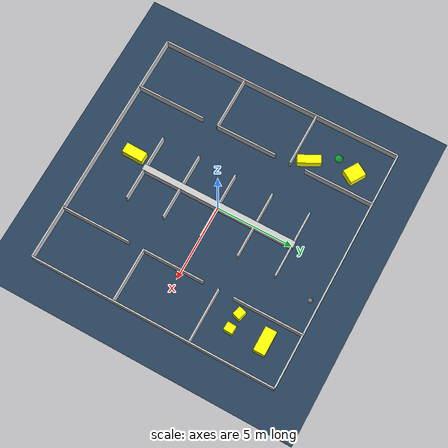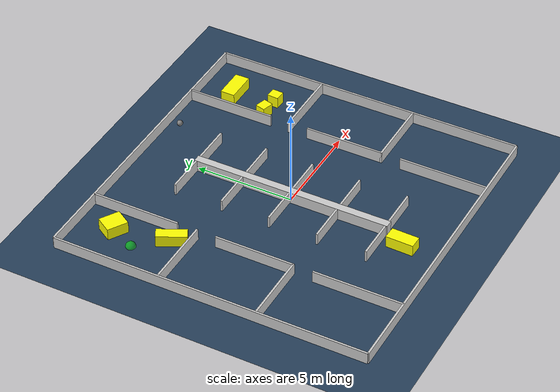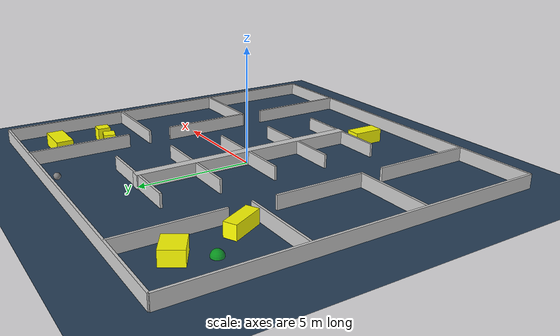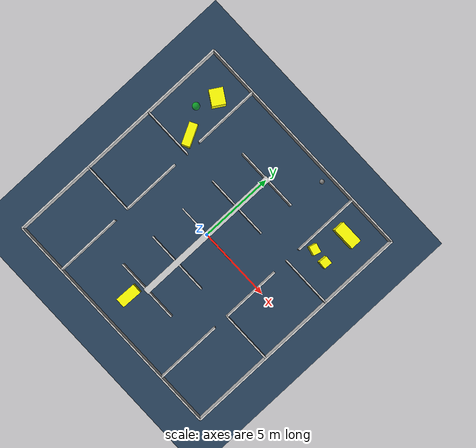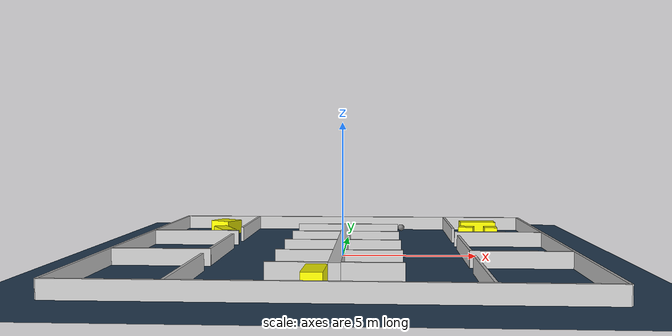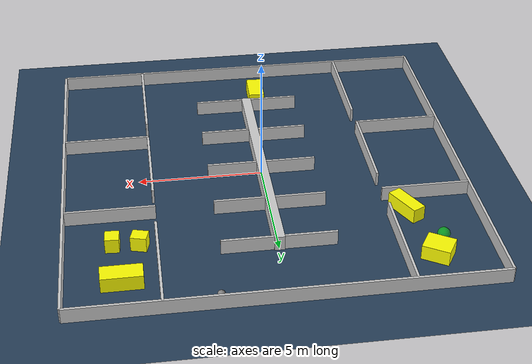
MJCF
<?xml version="1.0" ?>
<mujoco model="generated_environment">
  <option timestep="0.01" integrator="RK4" cone="elliptic"/>
  <default>
    <geom density="1"/>
  </default>
  <asset>
    <texture builtin="gradient" height="3072" rgb1="0.3 0.5 0.7" rgb2="0 0 0" type="skybox" width="512"/>
    <texture builtin="checker" height="300" mark="edge" markrgb="0.8 0.8 0.8" name="groundplane" rgb1="0.2 0.3 0.4" rgb2="0.1 0.2 0.3" type="2d" width="300"/>
    <material name="groundplane" reflectance="0.2" texrepeat="5 5" texture="groundplane" texuniform="true"/>
    <material name="robot" rgba="1.0 1.0 0.0 1.0"/>
  </asset>
  <worldbody>
    <light dir="0 0 -1" directional="true" pos="0 0 1.5"/>
    <geom condim="4" friction="0.5 0.005 0.001" material="groundplane" name="floor" size="0 0 0.05" type="plane"/>
    <body name="walls">
      <geom name="wall_1" condim="4" pos="-8.0 0.0 0.3" rgba="0.800000011920929 0.800000011920929 0.800000011920929 1.0" size="0.05 8.0 0.3" type="box"/>
      <geom name="wall_2" condim="4" pos="8.0 0.0 0.3" rgba="0.800000011920929 0.800000011920929 0.800000011920929 1.0" size="0.05 8.0 0.3" type="box"/>
      <geom name="wall_3" condim="4" pos="0.0 -8.0 0.3" rgba="0.800000011920929 0.800000011920929 0.800000011920929 1.0" size="8.0 0.05 0.3" type="box"/>
      <geom name="wall_4" condim="4" pos="0.0 8.0 0.3" rgba="0.800000011920929 0.800000011920929 0.800000011920929 1.0" size="8.0 0.05 0.3" type="box"/>
      <geom name="wall_5" condim="4" pos="-1.2 2.5 0.3" rgba="0.800000011920929 0.800000011920929 0.800000011920929 1.0" size="1.0 0.05 0.3" type="box"/>
      <geom name="wall_6" condim="4" pos="1.2 2.5 0.3" rgba="0.800000011920929 0.800000011920929 0.800000011920929 1.0" size="1.0 0.05 0.3" type="box"/>
      <geom name="wall_7" condim="4" pos="-1.2 -2.5 0.3" rgba="0.800000011920929 0.800000011920929 0.800000011920929 1.0" size="1.0 0.05 0.3" type="box"/>
      <geom name="wall_8" condim="4" pos="1.2 -2.5 0.3" rgba="0.800000011920929 0.800000011920929 0.800000011920929 1.0" size="1.0 0.05 0.3" type="box"/>
      <geom name="wall_9" condim="4" pos="-1.2 0.0 0.3" rgba="0.800000011920929 0.800000011920929 0.800000011920929 1.0" size="1.0 0.05 0.3" type="box"/>
      <geom name="wall_10" condim="4" pos="1.2 0.0 0.3" rgba="0.800000011920929 0.800000011920929 0.800000011920929 1.0" size="1.0 0.05 0.3" type="box"/>
      <geom name="wall_11" condim="4" pos="-1.2 5.0 0.3" rgba="0.800000011920929 0.800000011920929 0.800000011920929 1.0" size="1.0 0.05 0.3" type="box"/>
      <geom name="wall_12" condim="4" pos="1.2 5.0 0.3" rgba="0.800000011920929 0.800000011920929 0.800000011920929 1.0" size="1.0 0.05 0.3" type="box"/>
      <geom name="wall_13" condim="4" pos="-1.2 -5.0 0.3" rgba="0.800000011920929 0.800000011920929 0.800000011920929 1.0" size="1.0 0.05 0.3" type="box"/>
      <geom name="wall_14" condim="4" pos="1.2 -5.0 0.3" rgba="0.800000011920929 0.800000011920929 0.800000011920929 1.0" size="1.0 0.05 0.3" type="box"/>
      <geom name="wall_15" condim="4" pos="0.0 0.0 0.3" rgba="0.800000011920929 0.800000011920929 0.800000011920929 1.0" size="0.2 5.1 0.3" type="box"/>
      <geom name="wall_16" condim="4" pos="-4.5 5.75 0.3" rgba="0.800000011920929 0.800000011920929 0.800000011920929 1.0" size="0.05 2.25 0.3" type="box"/>
      <geom name="wall_17" condim="4" pos="-6.2 2.5 0.3" rgba="0.800000011920929 0.800000011920929 0.800000011920929 1.0" size="1.75 0.05 0.3" type="box"/>
      <geom name="wall_18" condim="4" pos="-4.5 -5.75 0.3" rgba="0.800000011920929 0.800000011920929 0.800000011920929 1.0" size="0.05 2.25 0.3" type="box"/>
      <geom name="wall_19" condim="4" pos="-6.2 -2.5 0.3" rgba="0.800000011920929 0.800000011920929 0.800000011920929 1.0" size="1.75 0.05 0.3" type="box"/>
      <geom name="wall_20" condim="4" pos="-4.5 -0.5 0.3" rgba="0.800000011920929 0.800000011920929 0.800000011920929 1.0" size="0.05 2.0 0.3" type="box"/>
      <geom name="wall_21" condim="4" pos="4.5 5.75 0.3" rgba="0.800000011920929 0.800000011920929 0.800000011920929 1.0" size="0.05 2.25 0.3" type="box"/>
      <geom name="wall_22" condim="4" pos="6.2 2.5 0.3" rgba="0.800000011920929 0.800000011920929 0.800000011920929 1.0" size="1.75 0.05 0.3" type="box"/>
      <geom name="wall_23" condim="4" pos="4.5 -5.75 0.3" rgba="0.800000011920929 0.800000011920929 0.800000011920929 1.0" size="0.05 2.25 0.3" type="box"/>
      <geom name="wall_24" condim="4" pos="6.2 -2.5 0.3" rgba="0.800000011920929 0.800000011920929 0.800000011920929 1.0" size="1.75 0.05 0.3" type="box"/>
      <geom name="wall_25" condim="4" pos="4.5 -0.5 0.3" rgba="0.800000011920929 0.800000011920929 0.800000011920929 1.0" size="0.05 2.0 0.3" type="box"/>
    </body>
    <body name="robot">
      <joint name="joint_x" type="slide" pos="0 0 0" axis="1 0 0"/>
      <joint name="joint_y" type="slide" pos="0 0 0" axis="0 1 0"/>
      <geom name="robot" type="sphere" pos="2.4220062252633454 7.448069987911648 0.15" size="0.15 0.15 0.15" mass="5.0" friction="1.0 0.005 0.0001" condim="4"/>
    </body>
    <body name="obstacle_1_movable">
      <geom name="obstacle_1_movable" condim="4" pos="-0.5379907595448312 -6.04367275130885 0.3" euler="0 0 268.4759258772437" friction="0.0 0.005 0.001" rgba="1 1 0 1" size="0.6904330043421395 0.33288417783408797 0.3" type="box" mass="0.1"/>
      <joint type="free"/>
    </body>
    <body name="obstacle_2_movable">
      <geom name="obstacle_2_movable" condim="4" pos="5.138565151928316 4.22955517502998 0.3" euler="0 0 74.71889364868986" friction="0.0 0.005 0.001" rgba="1 1 0 1" size="0.25888110173074963 0.3066406983180012 0.3" type="box" mass="0.1"/>
      <joint type="free"/>
    </body>
    <body name="obstacle_3_movable">
      <geom name="obstacle_3_movable" condim="4" pos="-5.751243989247745 6.200813429545725 0.3" euler="0 0 238.4993077835377" friction="0.0 0.005 0.001" rgba="1 1 0 1" size="0.4530489289813173 0.5365199748332101 0.3" type="box" mass="0.1"/>
      <joint type="free"/>
    </body>
    <body name="obstacle_4_movable">
      <geom name="obstacle_4_movable" condim="4" pos="-5.229813874952529 3.4049859881556666 0.3" euler="0 0 27.35281088512234" friction="0.0 0.005 0.001" rgba="1 1 0 1" size="0.27442463172333464 0.7411737777617953 0.3" type="box" mass="0.1"/>
      <joint type="free"/>
    </body>
    <body name="obstacle_5_movable">
      <geom name="obstacle_5_movable" condim="4" pos="6.157518749592283 4.15905879486417 0.3" euler="0 0 356.7704127316539" friction="0.0 0.005 0.001" rgba="1 1 0 1" size="0.26914230912138504 0.28641805994458097 0.3" type="box" mass="0.1"/>
      <joint type="free"/>
    </body>
    <body name="obstacle_6_movable">
      <geom name="obstacle_6_movable" condim="4" pos="5.8602031019618614 6.276566891665064 0.3" euler="0 0 180.26079927574042" friction="0.0 0.005 0.001" rgba="1 1 0 1" size="0.7808802265926376 0.3671290951935817 0.3" type="box" mass="0.1"/>
      <joint type="free"/>
    </body>
    <site name="goal" type="sphere" size="0.25 0.25 0.25" rgba="0 1 0 0.5" pos="-6.323330586631134 4.947832949219011 0.0"/>
  </worldbody>
  <actuator>
    <motor name="actuator_x" joint="joint_x" gear="1" ctrlrange="-1 1"/>
    <motor name="actuator_y" joint="joint_y" gear="1" ctrlrange="-1 1"/>
  </actuator>
</mujoco>
